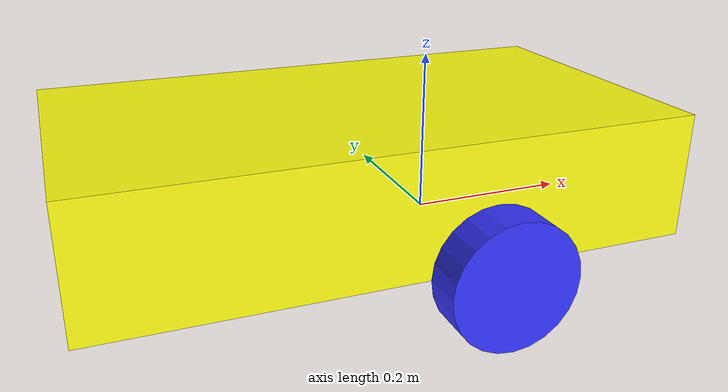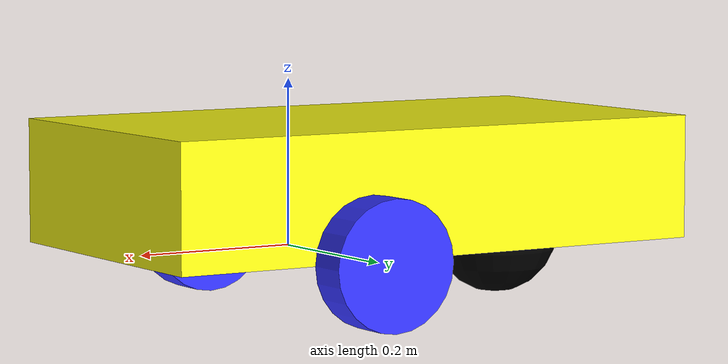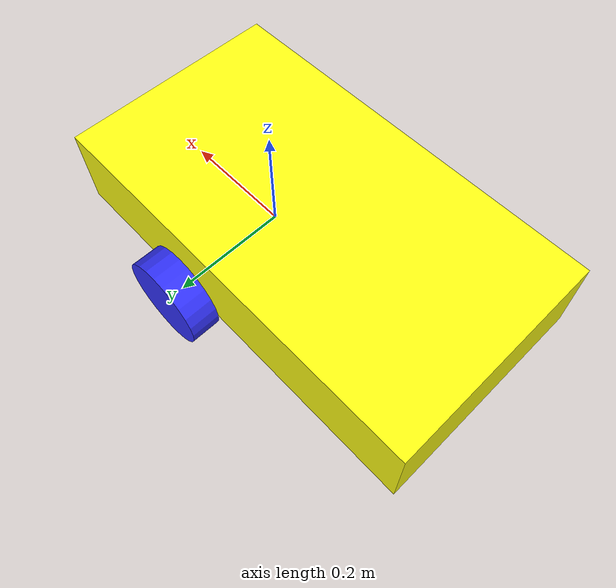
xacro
<?xml version="1.0"?>
<robot xmlns:xacro="http://www.ros.org/wiki/xacro">
    <xacro:include filename="inertial_macros.xacro" />

    <material name="white">
        <color rgba="1 1 1 1"/>
    </material>

    <material name="orange">
        <color rgba="1 0.3 0.1 1"/>
    </material>

    <material name="blue">
        <color rgba="0.2 0.2 1 1"/>
    </material>

    <material name="black">
        <color rgba="0 0 0 1"/>
    </material>

    <material name="yellow" >
        <color rgba="1.0 1.0 0.0784313725490196 1.0" />
    </material>

<!-- BASE LINK -->

    <link name="base_link">
    </link>

    <joint name="chassis_joint" type="fixed">
    <parent link="base_link"/>
    <child link="chassis"/>
    <origin xyz="0.25 0 0"/>
    </joint>

<!-- CHASSIS -->
    <link name="chassis">
    <visual>
        <origin xyz="-0.35 0 0.075" rpy="0 0 0"/>
        <geometry>
            <box size="0.7 0.38 0.15"/>
        </geometry>
        <material name="yellow"/>
    </visual>
    <collision>
        <origin xyz="-0.35 0 0.075" rpy="0 0 0"/>
        <geometry>
            <box size="0.7 0.38 0.15"/>
        </geometry>
    </collision>
    <xacro:inertial_box mass="0.5" x="0.7" y="0.38" z="0.15">
        <origin xyz="-0.35 0 0.075" rpy="0 0 0"/>
    </xacro:inertial_box>

</link>

<gazebo reference="chassis">
    <material>Gazebo/Yellow</material>
</gazebo>

<!-- LEFT WHEEL -->

<joint name="left_wheel_joint" type="continuous">
    <parent link="base_link"/>
    <child link="left_wheel"/>
    <origin xyz="0 0.215 0" rpy="-${pi/2} 0 0"/>
    <axis xyz="0 0 1"/>
</joint>

<link name="left_wheel">
    <visual>
        <geometry>
            <cylinder length="0.05" radius="0.0775" />
        </geometry>
        <material name="blue"/>
    </visual>
    <collision>
        <geometry>
            <cylinder length="0.05" radius="0.0775" />
        </geometry>
    </collision>

    <xacro:inertial_cylinder mass="0.1" length="0.05" radius="0.0775">
        <origin xyz="0 0 0" rpy="0 0 0"/>
    </xacro:inertial_cylinder>
</link>

<gazebo reference="left_wheel">
    <material>Gazebo/Blue</material>
</gazebo>

<!-- RIGHT WHEEL -->

    <joint name="right_wheel_joint" type="continuous">
        <parent link="base_link"/>
        <child link="right_wheel"/>
        <origin xyz="0 -0.215 0" rpy="${pi/2} 0 0"/>
        <axis xyz="0 0 -1"/>
    </joint>

    <link name="right_wheel">
        <visual>
            <geometry>
                <cylinder length="0.05" radius="0.0775" />
            </geometry>
            <material name="blue"/>
        </visual>
        <collision>
            <geometry>
                <cylinder length="0.05" radius="0.0775" />
            </geometry>
            <material name="blue"/>
        </collision>

    <xacro:inertial_cylinder mass="0.1" length="0.05" radius="0.0775">
        <origin xyz="0 0 0" rpy="0 0 0"/>
    </xacro:inertial_cylinder>

</link>

<gazebo reference="right_wheel">
    <material>Gazebo/Blue</material>
</gazebo>

<!-- CASTER WHEEL -->

<joint name="caster_wheel_joint" type="fixed">
    <parent link="chassis"/>
    <child link="caster_wheel"/>
    <origin xyz="-0.55 0 0" rpy="0 0 0"/>
</joint>

<link name="caster_wheel">
    <visual>
        <geometry>
            <sphere radius="0.0775" />
        </geometry>
        <material name="black"/>
    </visual>

    <collision>
        <geometry>
            <sphere radius="0.0775" />
        </geometry>
        <material name="black"/>
    </collision>
    <xacro:inertial_sphere mass="0.1" radius="0.0775">
        <origin xyz="0 0 0" rpy="0 0 0"/>
    </xacro:inertial_sphere>

</link>

<gazebo reference="caster_wheel">
    <material>Gazebo/Black</material>
    <mu1 value="0.001"/>
    <mu2 value="0.001"/>
</gazebo>

</robot>
